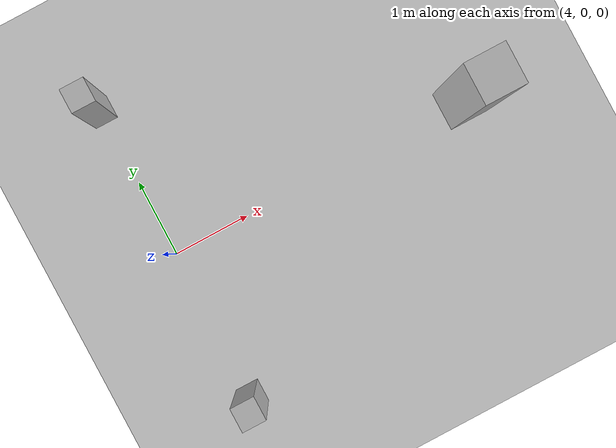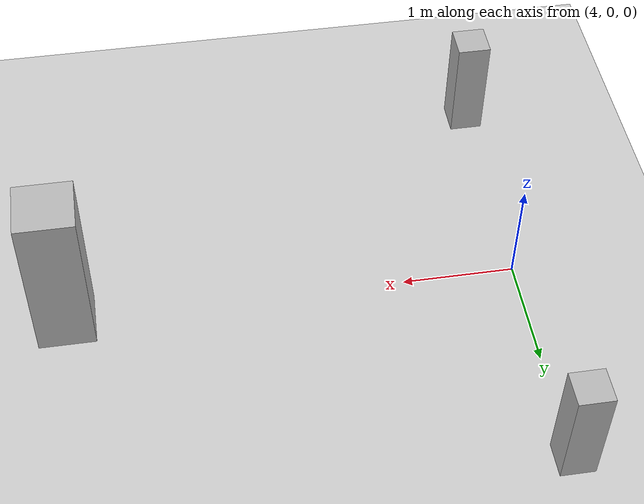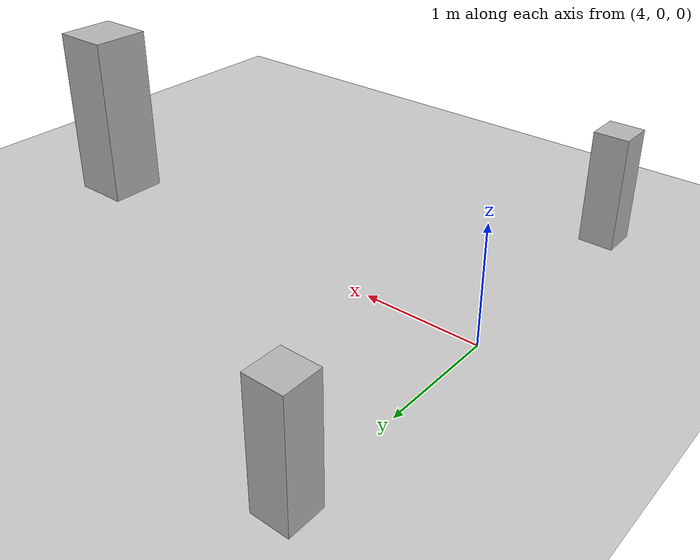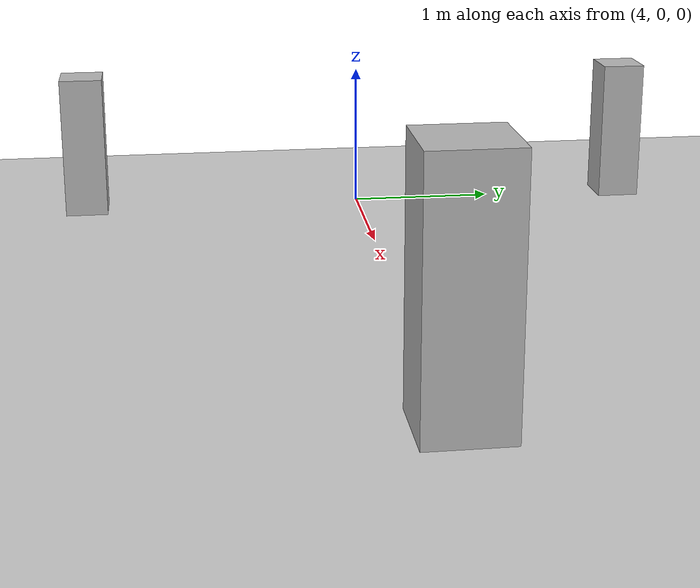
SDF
<?xml version="1.0" ?>
<sdf version="1.8">
  <world name="empty_course">
    <physics name="default_physics" type="ignored">
      <max_step_size>0.001</max_step_size>
      <real_time_factor>1.0</real_time_factor>
    </physics>

    <plugin filename="libignition-gazebo-physics-system.so"
            name="ignition::gazebo::systems::Physics"/>
    <plugin filename="libignition-gazebo-user-commands-system.so"
            name="ignition::gazebo::systems::UserCommands"/>
    <plugin filename="libignition-gazebo-scene-broadcaster-system.so"
            name="ignition::gazebo::systems::SceneBroadcaster"/>

    <gravity>0 0 -9.80665</gravity>

    <light type="directional" name="sun">
      <cast_shadows>true</cast_shadows>
      <pose>0 0 10 0 0 0</pose>
      <diffuse>0.8 0.8 0.8 1</diffuse>
      <specular>0.2 0.2 0.2 1</specular>
      <direction>-0.5 0.1 -0.9</direction>
    </light>

    <model name="ground_plane">
      <static>true</static>
      <link name="link">
        <collision name="collision">
          <geometry><plane><normal>0 0 1</normal><size>40 40</size></plane></geometry>
        </collision>
        <visual name="visual">
          <geometry><plane><normal>0 0 1</normal><size>40 40</size></plane></geometry>
        </visual>
      </link>
    </model>

    <model name="marker_left">
      <static>true</static>
      <pose>4 2 0.5 0 0 0</pose>
      <link name="link">
        <collision name="collision"><geometry><box><size>0.3 0.3 1.0</size></box></geometry></collision>
        <visual name="visual"><geometry><box><size>0.3 0.3 1.0</size></box></geometry></visual>
      </link>
    </model>

    <model name="marker_right">
      <static>true</static>
      <pose>4 -2 0.5 0 0 0</pose>
      <link name="link">
        <collision name="collision"><geometry><box><size>0.3 0.3 1.0</size></box></geometry></collision>
        <visual name="visual"><geometry><box><size>0.3 0.3 1.0</size></box></geometry></visual>
      </link>
    </model>

    <model name="marker_far">
      <static>true</static>
      <pose>8 0 0.75 0 0 0</pose>
      <link name="link">
        <collision name="collision"><geometry><box><size>0.5 0.5 1.5</size></box></geometry></collision>
        <visual name="visual"><geometry><box><size>0.5 0.5 1.5</size></box></geometry></visual>
      </link>
    </model>
  </world>
</sdf>
